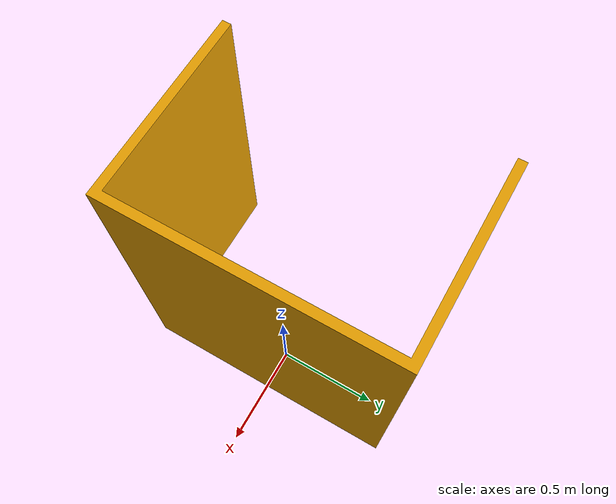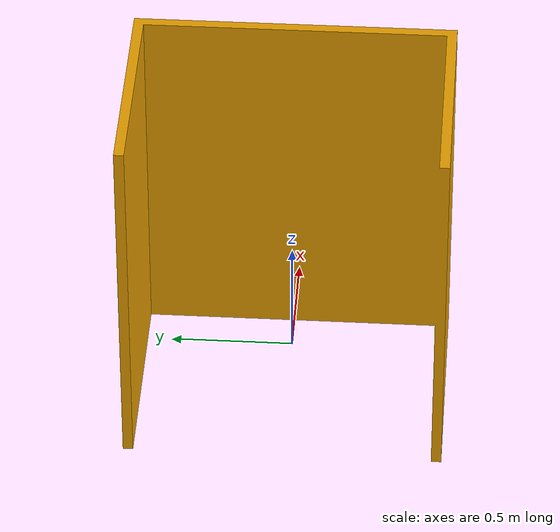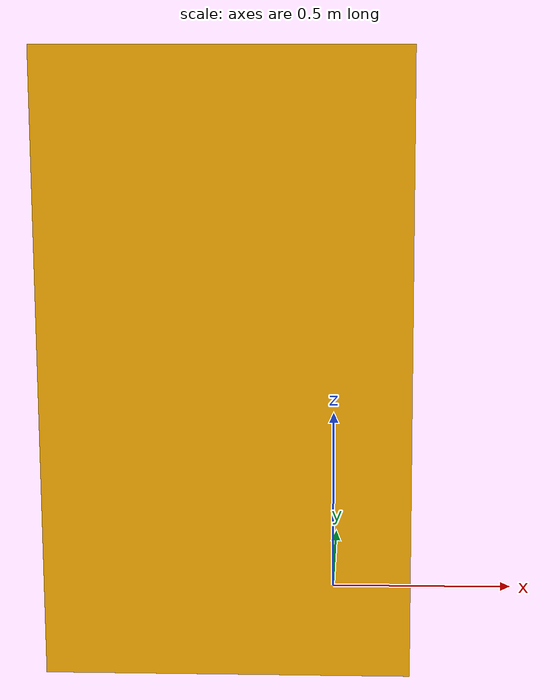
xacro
<?xml version="1.0"?>
<robot xmlns:xacro="http://www.ros.org/wiki/xacro">
  <link name="fence_link">
    <visual>
        <origin xyz="0 0 0" rpy="0 0 0" />
        <geometry>
          <mesh filename="package://ts_robot_description/mesh/fence/visual/fence.stl"  scale = "0.001 0.001 0.001"/>
        </geometry>
        <material name="transparent_gey"/>
    </visual>
    <collision>
        <origin xyz="0 0 0" rpy="0 0 0" />
        <geometry>
            <mesh filename="package://ts_robot_description/mesh/fence/collision/fence.stl"  scale = "0.001 0.001 0.001"/>
        </geometry>
    </collision>
    </link>
</robot>
